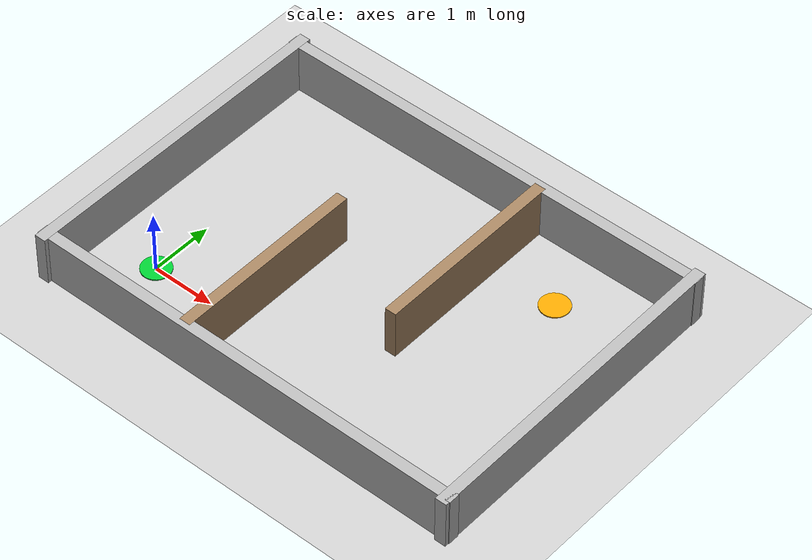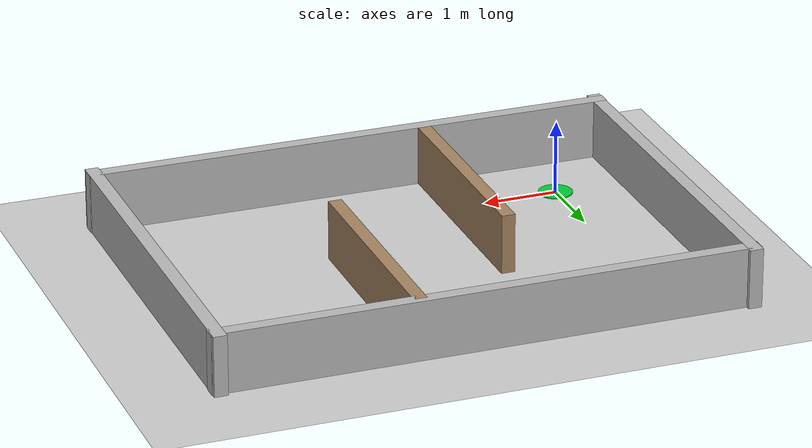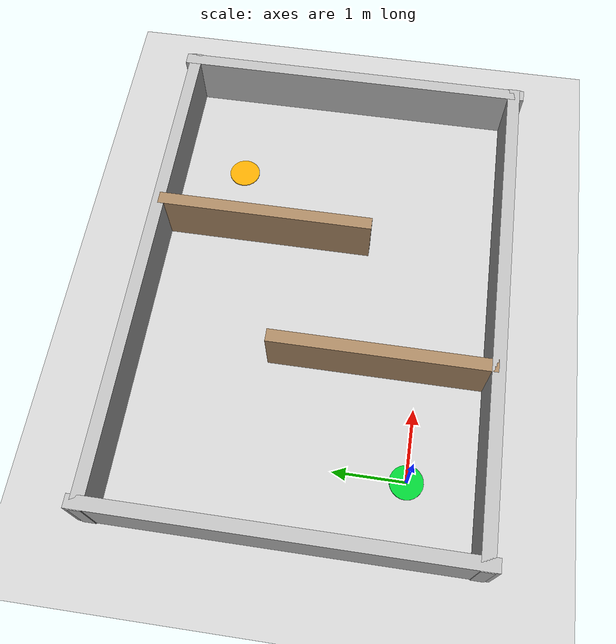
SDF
<?xml version="1.0"?>
<sdf version="1.6">

  <world name="canyon_world">

    <!-- 地面 -->
    <include>
      <uri>model://ground_plane</uri>
    </include>

    <!-- 光照 -->
    <include>
      <uri>model://sun</uri>
    </include>

    <!-- 场景背景 -->
    <scene>
      <ambient>0.5 0.5 0.5 1</ambient>
      <background>0.7 0.75 0.8 1</background>
    </scene>

    <!-- 自定义峡谷墙壁 -->
    <model name="canyon_walls">
      <static>true</static>

      <!-- 左侧外墙 -->
      <link name="west_wall">
        <pose>-1 1.5 0.4 0 0 0</pose>

        <collision name="collision">
          <geometry>
            <box>
              <size>0.18 5.3 0.8</size>
            </box>
          </geometry>
        </collision>

        <visual name="visual">
          <geometry>
            <box>
              <size>0.18 5.3 0.8</size>
            </box>
          </geometry>
        </visual>
      </link>

      <!-- 右侧外墙 -->
      <link name="east_wall">
        <pose>6 1.5 0.4 0 0 0</pose>

        <collision name="collision">
          <geometry>
            <box>
              <size>0.18 5.3 0.8</size>
            </box>
          </geometry>
        </collision>

        <visual name="visual">
          <geometry>
            <box>
              <size>0.18 5.3 0.8</size>
            </box>
          </geometry>
        </visual>
      </link>

      <!-- 下侧外墙 -->
      <link name="south_wall">
        <pose>2.5 -1 0.4 0 0 0</pose>

        <collision name="collision">
          <geometry>
            <box>
              <size>7.2 0.18 0.8</size>
            </box>
          </geometry>
        </collision>

        <visual name="visual">
          <geometry>
            <box>
              <size>7.2 0.18 0.8</size>
            </box>
          </geometry>
        </visual>
      </link>

      <!-- 上侧外墙 -->
      <link name="north_wall">
        <pose>2.5 4 0.4 0 0 0</pose>

        <collision name="collision">
          <geometry>
            <box>
              <size>7.2 0.18 0.8</size>
            </box>
          </geometry>
        </collision>

        <visual name="visual">
          <geometry>
            <box>
              <size>7.2 0.18 0.8</size>
            </box>
          </geometry>
        </visual>
      </link>

      <!-- 第一处峡谷隔墙 -->
      <link name="inner_wall_1">
        <pose>1.5 0.55 0.4 0 0 0</pose>

        <collision name="collision">
          <geometry>
            <box>
              <size>0.18 3.1 0.8</size>
            </box>
          </geometry>
        </collision>

        <visual name="visual">
          <geometry>
            <box>
              <size>0.18 3.1 0.8</size>
            </box>
          </geometry>

          <material>
            <ambient>0.58 0.45 0.32 1</ambient>
            <diffuse>0.65 0.52 0.38 1</diffuse>
          </material>
        </visual>
      </link>

      <!-- 第二处峡谷隔墙 -->
      <link name="inner_wall_2">
        <pose>3.4 2.45 0.4 0 0 0</pose>

        <collision name="collision">
          <geometry>
            <box>
              <size>0.18 3.1 0.8</size>
            </box>
          </geometry>
        </collision>

        <visual name="visual">
          <geometry>
            <box>
              <size>0.18 3.1 0.8</size>
            </box>
          </geometry>

          <material>
            <ambient>0.58 0.45 0.32 1</ambient>
            <diffuse>0.65 0.52 0.38 1</diffuse>
          </material>
        </visual>
      </link>

    </model>

    <!-- 绿色起点标记 -->
    <model name="start_marker">
      <static>true</static>

      <link name="start_link">
        <pose>0 0 0.012 0 0 0</pose>

        <visual name="visual">
          <geometry>
            <cylinder>
              <radius>0.23</radius>
              <length>0.015</length>
            </cylinder>
          </geometry>

          <material>
            <ambient>0 0.8 0.2 1</ambient>
            <diffuse>0 0.8 0.2 1</diffuse>
          </material>
        </visual>
      </link>
    </model>

    <!-- 黄色终点标记 -->
    <model name="finish_marker">
      <static>true</static>

      <link name="finish_link">
        <pose>4.5 3.0 0.012 0 0 0</pose>

        <visual name="visual">
          <geometry>
            <cylinder>
              <radius>0.23</radius>
              <length>0.015</length>
            </cylinder>
          </geometry>

          <material>
            <ambient>1 0.65 0 1</ambient>
            <diffuse>1 0.65 0 1</diffuse>
          </material>
        </visual>
      </link>
    </model>

  </world>

</sdf>
